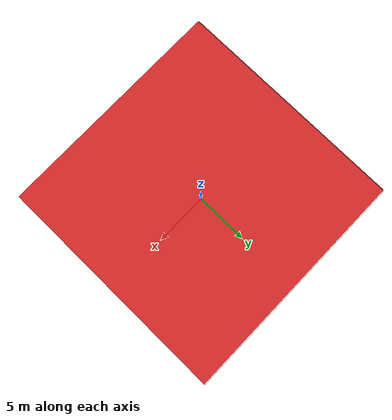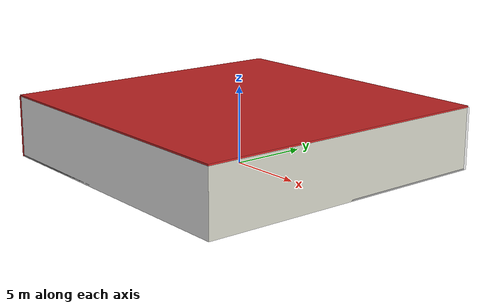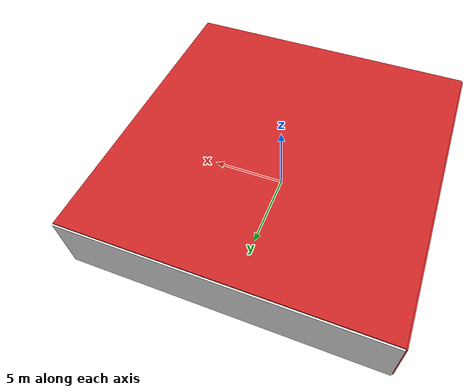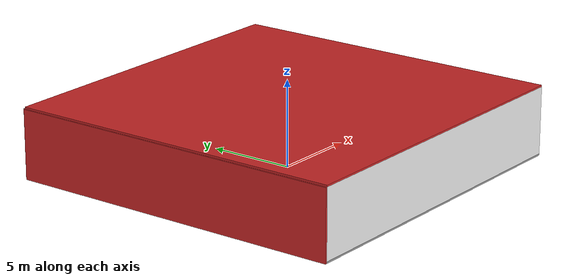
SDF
<sdf version="1.4">
 <world name="default">
  <physics type="ode">
   <max_step_size>0.001</max_step_size>
   <real_time_factor>1</real_time_factor>
   <real_time_update_rate>1000</real_time_update_rate>
   <gravity>0 0 -9.8</gravity>
  </physics>
  <scene><ambient>0.4 0.4 0.4 1</ambient><background>0.7 0.7 0.7 1</background><shadows>1</shadows></scene>
  <model name="Surrounding">
   <static>1</static>
   <link name="Ceiling">
    <collision name="Ceiling_Collision"><geometry><box><size>20 20 0.1</size></box></geometry></collision>
    <visual name="Ceiling_Visual">
     <geometry><box><size>20 20 0.1</size></box></geometry>
     <material>
      <script><uri>file://media/materials/scripts/gazebo.material</uri><name>Gazebo/RedBright</name></script>
     </material>
    </visual>
    <pose>0 0 4.05 0 0 0</pose>
   </link>
   <link name="Wall_South">
    <collision name="Wall_South_Collision">
     <geometry><box><size>20 0 4</size></box></geometry>
     <pose>0 0 2 0 -0 0</pose>
    </collision>
    <visual name="Wall_South_Visual">
     <pose>0 0 2 0 -0 0</pose>
     <geometry><box><size>20 0 4</size></box></geometry>
     <material>
      <script><uri>file://media/materials/scripts/gazebo.material</uri><name>Gazebo/White</name></script>
     </material>
    </visual>
    <velocity_decay><linear>0</linear><angular>0</angular></velocity_decay>
    <pose>0 -10 0 0 -0 0</pose>
   </link>
   <link name="Wall_East">
    <collision name="Wall_21_Collision">
     <geometry><box><size>20 0 4</size></box></geometry>
     <pose>0 0 2 0 -0 0</pose>
    </collision>
    <visual name="Wall_21_Visual">
     <pose>0 0 2 0 -0 0</pose>
     <geometry><box><size>20 0 4</size></box></geometry>
     <material>
      <script><uri>file://media/materials/scripts/gazebo.material</uri><name>Gazebo/PaintedWall</name></script>
     </material>
    </visual>
    <velocity_decay><linear>0</linear><angular>0</angular></velocity_decay>
    <pose>10 0 0 0 -0 1.5708</pose>
   </link>
   <link name="Wall_North">
    <collision name="Wall_22_Collision">
     <geometry><box><size>20 0.2 4</size></box></geometry>
     <pose>0 0 2 0 -0 0</pose>
    </collision>
    <visual name="Wall_22_Visual">
     <pose>0 0 2 0 -0 0</pose>
     <geometry><box><size>20 0.2 4</size></box></geometry>
     <material>
      <script><uri>file://media/materials/scripts/gazebo.material</uri><name>Gazebo/White</name></script>
     </material>
    </visual>
    <velocity_decay><linear>0</linear><angular>0</angular></velocity_decay>
    <pose>0 10 0 0 -0 0</pose>
   </link>
   <link name="Wall_West">
    <collision name="Wall_23_Collision">
     <geometry><box><size>20 0.2 4</size></box></geometry>
     <pose>0 0 2 0 -0 0</pose>
    </collision>
    <visual name="Wall_23_Visual">
     <pose>0 0 2 0 -0 0</pose>
     <geometry><box><size>20 0.2 4</size></box></geometry>
     <material>
      <script><uri>file://media/materials/scripts/gazebo.material</uri><name>Gazebo/RedGlow</name></script>
     </material>
    </visual>
    <velocity_decay><linear>0</linear><angular>0</angular></velocity_decay>
    <pose>-10 0 0 0 0 -1.5708</pose>
   </link>
   <link name="Ground_link">
    <collision name="collision">
     <pose>0 0 .05 0 -0 0</pose>
     <geometry><box><size>20 20 0.1</size></box></geometry>
    </collision>
    <visual name="visual">
     <pose>0 0 .05 0 -0 0</pose>
     <geometry><box><size>20 20 0.1</size></box></geometry>
     <material>
      <script><uri>file://media/materials/scripts/gazebo.material</uri><name>Gazebo/Grey</name></script>
     </material>
    </visual>
   </link>
   <static>1</static>
  </model>
  <spherical_coordinates>
   <surface_model>EARTH_WGS84</surface_model>
   <latitude_deg>0</latitude_deg>
   <longitude_deg>0</longitude_deg>
   <elevation>0</elevation>
   <heading_deg>0</heading_deg>
  </spherical_coordinates>
  <light name="lightball_0" type="diffuse">
   <diffuse>0.8 0.8 0.8 1</diffuse>
   <specular>0.2 0.2 0.2 1</specular>
   <attenuation>
    <range>100</range>
    <constant>0.7</constant>
    <linear>0.01</linear>
    <quadratic>0.001</quadratic>
   </attenuation>
   <direction>-0.5 0.1 -0.9</direction>
   <pose>5.38837319112 4.13444049221 0.632815042409 0 0 0</pose>
  </light>
  <light name="lightball_1" type="diffuse">
   <diffuse>0.8 0.8 0.8 1</diffuse>
   <specular>0.2 0.2 0.2 1</specular>
   <attenuation>
    <range>100</range>
    <constant>0.7</constant>
    <linear>0.01</linear>
    <quadratic>0.001</quadratic>
   </attenuation>
   <direction>-0.5 0.1 -0.9</direction>
   <pose>0.406318750997 1.63205295793 3.46652052297 0 0 0</pose>
  </light>
  <light name="lightball_2" type="diffuse">
   <diffuse>0.8 0.8 0.8 1</diffuse>
   <specular>0.2 0.2 0.2 1</specular>
   <attenuation>
    <range>100</range>
    <constant>0.7</constant>
    <linear>0.01</linear>
    <quadratic>0.001</quadratic>
   </attenuation>
   <direction>-0.5 0.1 -0.9</direction>
   <pose>8.77365238331 8.07676912626 2.46395328766 0 0 0</pose>
  </light>
  <light name="lightball_3" type="diffuse">
   <diffuse>0.8 0.8 0.8 1</diffuse>
   <specular>0.2 0.2 0.2 1</specular>
   <attenuation>
    <range>100</range>
    <constant>0.7</constant>
    <linear>0.01</linear>
    <quadratic>0.001</quadratic>
   </attenuation>
   <direction>-0.5 0.1 -0.9</direction>
   <pose>8.61808931529 -0.308265252858 1.96535441305 0 0 0</pose>
  </light>
  <light name="lightball_4" type="diffuse">
   <diffuse>0.8 0.8 0.8 1</diffuse>
   <specular>0.2 0.2 0.2 1</specular>
   <attenuation>
    <range>100</range>
    <constant>0.7</constant>
    <linear>0.01</linear>
    <quadratic>0.001</quadratic>
   </attenuation>
   <direction>-0.5 0.1 -0.9</direction>
   <pose>2.43883960077 4.29547271122 1.77347114827 0 0 0</pose>
  </light>
  <light name="lightball_5" type="diffuse">
   <diffuse>0.8 0.8 0.8 1</diffuse>
   <specular>0.2 0.2 0.2 1</specular>
   <attenuation>
    <range>100</range>
    <constant>0.7</constant>
    <linear>0.01</linear>
    <quadratic>0.001</quadratic>
   </attenuation>
   <direction>-0.5 0.1 -0.9</direction>
   <pose>-1.01715921021 9.23840614259 1.42532511537 0 0 0</pose>
  </light>
  <light name="lightball_6" type="diffuse">
   <diffuse>0.8 0.8 0.8 1</diffuse>
   <specular>0.2 0.2 0.2 1</specular>
   <attenuation>
    <range>100</range>
    <constant>0.7</constant>
    <linear>0.01</linear>
    <quadratic>0.001</quadratic>
   </attenuation>
   <direction>-0.5 0.1 -0.9</direction>
   <pose>-8.48792316584 2.38919241945 2.52532404232 0 0 0</pose>
  </light>
  <light name="lightball_7" type="diffuse">
   <diffuse>0.8 0.8 0.8 1</diffuse>
   <specular>0.2 0.2 0.2 1</specular>
   <attenuation>
    <range>100</range>
    <constant>0.7</constant>
    <linear>0.01</linear>
    <quadratic>0.001</quadratic>
   </attenuation>
   <direction>-0.5 0.1 -0.9</direction>
   <pose>3.61350483825 0.0984148082599 1.6936527219 0 0 0</pose>
  </light>
  <light name="lightball_8" type="diffuse">
   <diffuse>0.8 0.8 0.8 1</diffuse>
   <specular>0.2 0.2 0.2 1</specular>
   <attenuation>
    <range>100</range>
    <constant>0.7</constant>
    <linear>0.01</linear>
    <quadratic>0.001</quadratic>
   </attenuation>
   <direction>-0.5 0.1 -0.9</direction>
   <pose>2.53055621535 5.95960660549 1.69157904865 0 0 0</pose>
  </light>
  <light name="lightball_9" type="diffuse">
   <diffuse>0.8 0.8 0.8 1</diffuse>
   <specular>0.2 0.2 0.2 1</specular>
   <attenuation>
    <range>100</range>
    <constant>0.7</constant>
    <linear>0.01</linear>
    <quadratic>0.001</quadratic>
   </attenuation>
   <direction>-0.5 0.1 -0.9</direction>
   <pose>-9.05259399153 9.55770066685 0.555557497786 0 0 0</pose>
  </light>
  <include><uri>model://cabinet</uri><pose>-4.91539619332 -2.17911002478 0 0 0 1.44005090859</pose></include>
  <include>
   <uri>model://construction_cone</uri>
   <pose>8.19048815023 4.99272468339 0 0 0 2.4963963116</pose>
  </include>
 </world>
</sdf>

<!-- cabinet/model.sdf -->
<sdf version="1.5">
  <model name="cabinet">
    <static>true</static>
    <link name="cabinet_bottom_plate">
      <inertial>
        <pose>0 0 -1 0 0 0</pose>
        <inertia>
          <ixx>2.050000</ixx>
          <ixy>0</ixy>
          <ixz>0</ixz>
          <iyy>2.050000</iyy>
          <iyz>0</iyz>
          <izz>2.050000</izz>
        </inertia>
        <mass>25.000000</mass>
      </inertial>
      <collision name="cabinet_bottom_plate_geom">
        <pose>0 0 0.010000 0 0 0</pose>
        <geometry>
          <box>
            <size>0.450000 0.450000 0.020000</size>
          </box>
        </geometry>
      </collision>
      <visual name="cabinet_bottom_plate_geom_visual">
        <pose>0 0 0.010000 0 0 0</pose>
        <geometry>
          <box>
            <size>0.450000 0.450000 0.020000</size>
          </box>
        </geometry>
        <material>
          <script>
            <uri>model://media/materials/scripts/gazebo.material</uri>
            <name>Gazebo/Wood</name>
          </script>
        </material>
      </visual>
      <collision name="cabinet_bottom_plate_geom_cabinet_back_plate">
        <pose>0.235000 0 0.510000 0 0 0</pose>
        <geometry>
          <box>
            <size>0.020000 0.450000 1.020000</size>
          </box>
        </geometry>
      </collision>
      <visual name="cabinet_bottom_plate_geom_cabinet_back_plate_visual">
        <pose>0.235000 0 0.510000 0 0 0</pose>
        <geometry>
          <box>
            <size>0.020000 0.450000 1.020000</size>
          </box>
        </geometry>
        <material>
          <script>
            <uri>model://media/materials/scripts/gazebo.material</uri>
            <name>Gazebo/Wood</name>
          </script>
        </material>
      </visual>
      <collision name="cabinet_bottom_plate_geom_cabinet_left_plate">
        <pose>0 0.235000 0.510000 0 0 0</pose>
        <geometry>
          <box>
            <size>0.450000 0.020000 1.020000</size>
          </box>
        </geometry>
      </collision>
      <visual name="cabinet_bottom_plate_geom_cabinet_left_plate_visual">
        <pose>0 0.235000 0.510000 0 0 0</pose>
        <geometry>
          <box>
            <size>0.450000 0.020000 1.020000</size>
          </box>
        </geometry>
        <material>
          <script>
            <uri>model://media/materials/scripts/gazebo.material</uri>
            <name>Gazebo/Wood</name>
          </script>
        </material>
      </visual>
      <collision name="cabinet_bottom_plate_geom_cabinet_middle_plate">
        <pose>0 0 0.510000 0 0 0</pose>
        <geometry>
          <box>
            <size>0.450000 0.450000 0.020000</size>
          </box>
        </geometry>
      </collision>
      <visual name="cabinet_bottom_plate_geom_cabinet_middle_plate_visual">
        <pose>0 0 0.510000 0 0 0</pose>
        <geometry>
          <box>
            <size>0.450000 0.450000 0.020000</size>
          </box>
        </geometry>
        <material>
          <script>
            <uri>model://media/materials/scripts/gazebo.material</uri>
            <name>Gazebo/Wood</name>
          </script>
        </material>
      </visual>
      <collision name="cabinet_bottom_plate_geom_cabinet_right_plate">
        <pose>0 -0.235000 0.510000 0 0 0</pose>
        <geometry>
          <box>
            <size>0.450000 0.020000 1.020000</size>
          </box>
        </geometry>
      </collision>
      <visual name="cabinet_bottom_plate_geom_cabinet_right_plate_visual">
        <pose>0 -0.235000 0.510000 0 0 0</pose>
        <geometry>
          <box>
            <size>0.450000 0.020000 1.020000</size>
          </box>
        </geometry>
        <material>
          <script>
            <uri>model://media/materials/scripts/gazebo.material</uri>
            <name>Gazebo/Wood</name>
          </script>
        </material>
      </visual>
      <collision name="cabinet_bottom_plate_geom_cabinet_top_plate">
        <pose>0 0 1.010000 0 0 0</pose>
        <geometry>
          <box>
            <size>0.450000 0.450000 0.020000</size>
          </box>
        </geometry>
      </collision>
      <visual name="cabinet_bottom_plate_geom_cabinet_top_plate_visual">
        <pose>0 0 1.010000 0 0 0</pose>
        <geometry>
          <box>
            <size>0.450000 0.450000 0.020000</size>
          </box>
        </geometry>
        <material>
          <script>
            <uri>model://media/materials/scripts/gazebo.material</uri>
            <name>Gazebo/Wood</name>
          </script>
        </material>
      </visual>
    </link>
  </model>
</sdf>

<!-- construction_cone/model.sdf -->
<sdf version="1.5">
  <model name="Construction Cone">
    <link name="link">
      <collision name="collision">
        <geometry>
          <mesh>
            <scale>10 10 10</scale>
            <uri>file://isr-testbed/construction_cone/meshes/construction_cone.dae</uri>
          </mesh>
        </geometry>
      </collision>
      <visual name="visual">
        <geometry>
          <mesh>
            <scale>10 10 10</scale>
            <uri>file://isr-testbed/construction_cone/meshes/construction_cone.dae</uri>
          </mesh>
        </geometry>
      </visual>
    </link>
  </model>
</sdf>
